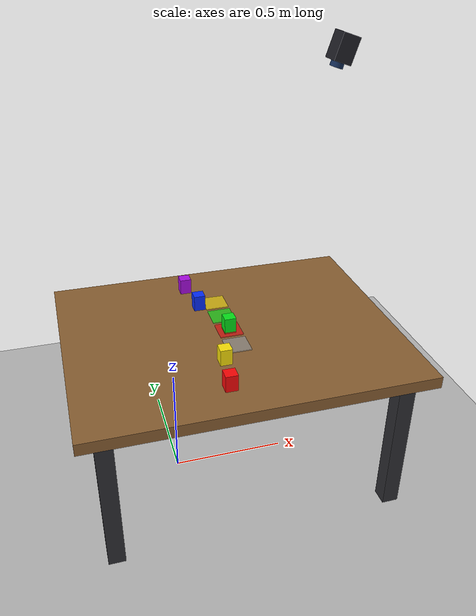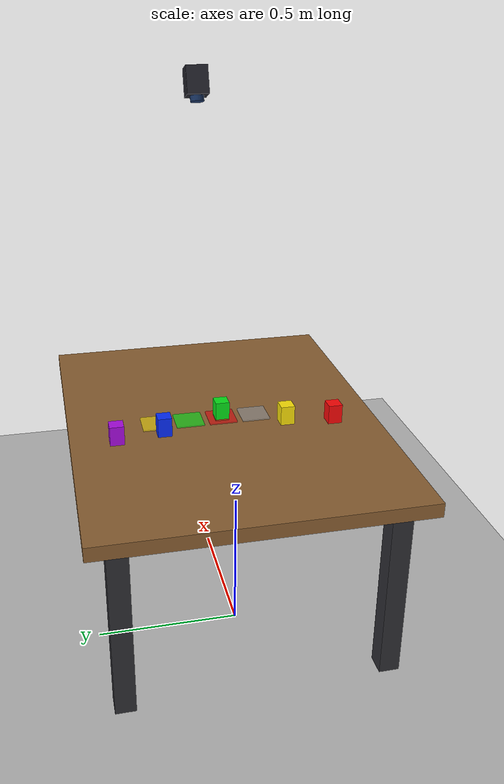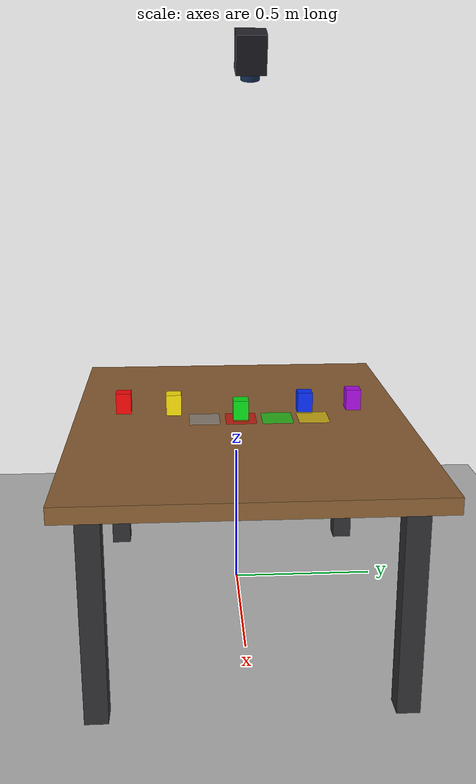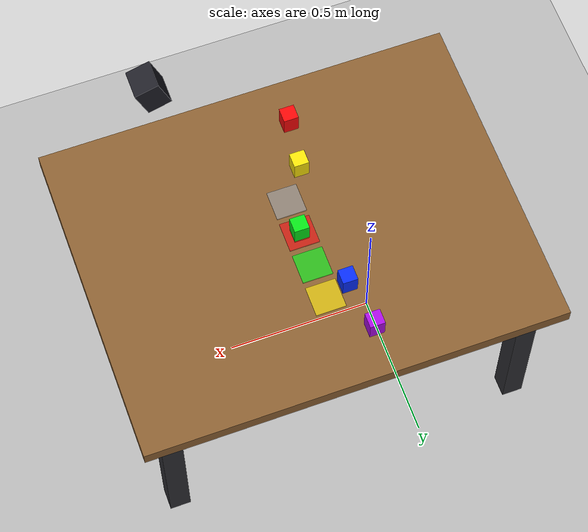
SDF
<?xml version="1.0"?>
<sdf version="1.7">
  <world name="ur3e_workcell">
    <gravity>0 0 -9.81</gravity>
    <physics name="default_physics" type="ignored">
      <max_step_size>0.001</max_step_size>
      <real_time_factor>1.0</real_time_factor>
    </physics>

    <!-- Gazebo Sim 6 / Fortress server systems. -->
    <plugin filename="ignition-gazebo-physics-system" name="gz::sim::systems::Physics"/>
    <plugin filename="ignition-gazebo-user-commands-system" name="gz::sim::systems::UserCommands"/>
    <plugin filename="ignition-gazebo-scene-broadcaster-system" name="gz::sim::systems::SceneBroadcaster"/>
    <plugin filename="ignition-gazebo-sensors-system" name="gz::sim::systems::Sensors">
      <render_engine>ogre2</render_engine>
    </plugin>

    <scene>
      <ambient>0.65 0.65 0.65</ambient>
      <background>0.82 0.84 0.88</background>
      <shadows>true</shadows>
    </scene>

    <light type="directional" name="sun">
      <cast_shadows>true</cast_shadows>
      <pose>0 0 10 0 0 0</pose>
      <diffuse>0.8 0.8 0.8 1</diffuse>
      <specular>0.2 0.2 0.2 1</specular>
      <direction>-0.5 0.1 -0.9</direction>
    </light>

    <model name="ground_plane">
      <static>true</static>
      <link name="ground_link">
        <collision name="collision"><geometry><plane><normal>0 0 1</normal><size>10 10</size></plane></geometry></collision>
        <visual name="visual"><geometry><plane><normal>0 0 1</normal><size>10 10</size></plane></geometry><material><ambient>0.72 0.72 0.72 1</ambient><diffuse>0.72 0.72 0.72 1</diffuse></material></visual>
      </link>
    </model>

    <!-- 1.40 x 1.10 m work table. Its top surface is at z=0.70 m. -->
    <model name="work_table">
      <static>true</static>
      <link name="table_link">
        <visual name="top_visual">
          <pose>0.25 0 0.675 0 0 0</pose>
          <geometry><box><size>1.40 1.10 0.05</size></box></geometry>
          <material><ambient>0.40 0.28 0.16 1</ambient><diffuse>0.55 0.38 0.20 1</diffuse></material>
        </visual>
        <collision name="top_collision">
          <pose>0.25 0 0.675 0 0 0</pose>
          <geometry><box><size>1.40 1.10 0.05</size></box></geometry>
        </collision>
        <visual name="leg_fl"><pose>-0.35 -0.45 0.325 0 0 0</pose><geometry><box><size>0.07 0.07 0.65</size></box></geometry><material><ambient>0.18 0.18 0.20 1</ambient></material></visual>
        <collision name="leg_fl_collision"><pose>-0.35 -0.45 0.325 0 0 0</pose><geometry><box><size>0.07 0.07 0.65</size></box></geometry></collision>
        <visual name="leg_fr"><pose>-0.35 0.45 0.325 0 0 0</pose><geometry><box><size>0.07 0.07 0.65</size></box></geometry><material><ambient>0.18 0.18 0.20 1</ambient></material></visual>
        <collision name="leg_fr_collision"><pose>-0.35 0.45 0.325 0 0 0</pose><geometry><box><size>0.07 0.07 0.65</size></box></geometry></collision>
        <visual name="leg_bl"><pose>0.85 -0.45 0.325 0 0 0</pose><geometry><box><size>0.07 0.07 0.65</size></box></geometry><material><ambient>0.18 0.18 0.20 1</ambient></material></visual>
        <collision name="leg_bl_collision"><pose>0.85 -0.45 0.325 0 0 0</pose><geometry><box><size>0.07 0.07 0.65</size></box></geometry></collision>
        <visual name="leg_br"><pose>0.85 0.45 0.325 0 0 0</pose><geometry><box><size>0.07 0.07 0.65</size></box></geometry><material><ambient>0.18 0.18 0.20 1</ambient></material></visual>
        <collision name="leg_br_collision"><pose>0.85 0.45 0.325 0 0 0</pose><geometry><box><size>0.07 0.07 0.65</size></box></geometry></collision>
      </link>
    </model>

    <!-- Rigid, dynamic 5 x 5 x 7 cm boxes, 5 g each. Positive mass and
         box-consistent inertia keep DART stable; friction holds a pinched box. -->
    <model name="red_box">
      <pose>0.144721 -0.389443 0.735 0 0 0</pose>
      <link name="link"><inertial><mass>0.001</mass><inertia><ixx>0.0000030833335</ixx><iyy>0.0000030833335</iyy><izz>0.0000020833335</izz></inertia></inertial><collision name="collision"><geometry><box><size>0.05 0.05 0.07</size></box></geometry><surface><friction><ode><mu>3.0</mu><mu2>3.0</mu2></ode></friction></surface></collision><visual name="visual"><geometry><box><size>0.05 0.05 0.07</size></box></geometry><material><ambient>0.8 0.02 0.02 1</ambient><diffuse>1 0.03 0.03 1</diffuse></material></visual></link>
    </model>
    <model name="yellow_box">
      <pose>0.170711 -0.220711 0.735 0 0 0</pose>
      <link name="link"><inertial><mass>0.001</mass><inertia><ixx>0.0000030833335</ixx><iyy>0.0000030833335</iyy><izz>0.0000020833335</izz></inertia></inertial><collision name="collision"><geometry><box><size>0.05 0.05 0.07</size></box></geometry><surface><friction><ode><mu>3.0</mu><mu2>3.0</mu2></ode></friction></surface></collision><visual name="visual"><geometry><box><size>0.05 0.05 0.07</size></box></geometry><material><ambient>0.85 0.75 0.02 1</ambient><diffuse>1 0.9 0.03 1</diffuse></material></visual></link>
    </model>
    <model name="green_box">
      <pose>0.25 0 0.735 0 0 0</pose>
      <link name="link"><inertial><mass>0.001</mass><inertia><ixx>0.0000030833335</ixx><iyy>0.0000030833335</iyy><izz>0.0000020833335</izz></inertia></inertial><collision name="collision"><geometry><box><size>0.05 0.05 0.07</size></box></geometry><surface><friction><ode><mu>3.0</mu><mu2>3.0</mu2></ode></friction></surface></collision><visual name="visual"><geometry><box><size>0.05 0.05 0.07</size></box></geometry><material><ambient>0.02 0.65 0.08 1</ambient><diffuse>0.03 0.9 0.10 1</diffuse></material></visual></link>
    </model>
    <model name="blue_box">
      <pose>0.170711 0.220711 0.735 0 0 0</pose>
      <link name="link"><inertial><mass>0.001</mass><inertia><ixx>0.0000030833335</ixx><iyy>0.0000030833335</iyy><izz>0.0000020833335</izz></inertia></inertial><collision name="collision"><geometry><box><size>0.05 0.05 0.07</size></box></geometry><surface><friction><ode><mu>3.0</mu><mu2>3.0</mu2></ode></friction></surface></collision><visual name="visual"><geometry><box><size>0.05 0.05 0.07</size></box></geometry><material><ambient>0.02 0.12 0.75 1</ambient><diffuse>0.03 0.18 1 1</diffuse></material></visual></link>
    </model>
    <model name="purple_box">
      <pose>0.144721 0.389443 0.735 0 0 0</pose>
      <link name="link"><inertial><mass>0.001</mass><inertia><ixx>0.0000030833335</ixx><iyy>0.0000030833335</iyy><izz>0.0000020833335</izz></inertia></inertial><collision name="collision"><geometry><box><size>0.05 0.05 0.07</size></box></geometry><surface><friction><ode><mu>3.0</mu><mu2>3.0</mu2></ode></friction></surface></collision><visual name="visual"><geometry><box><size>0.05 0.05 0.07</size></box></geometry><material><ambient>0.48 0.03 0.65 1</ambient><diffuse>0.68 0.05 0.9 1</diffuse></material></visual></link>
    </model>

    <model name="zone_1_red">
      <static>true</static><pose>0.25 0.00 0.7025 0 0 0</pose><link name="link"><visual name="visual"><transparency>0.28</transparency><geometry><box><size>0.10 0.10 0.005</size></box></geometry><material><ambient>0.75 0.05 0.05 0.72</ambient><diffuse>0.9 0.08 0.08 0.72</diffuse></material></visual></link>
    </model>
    <model name="zone_2_green">
      <static>true</static><pose>0.25 0.12 0.7025 0 0 0</pose><link name="link"><visual name="visual"><transparency>0.28</transparency><geometry><box><size>0.10 0.10 0.005</size></box></geometry><material><ambient>0.05 0.65 0.08 0.72</ambient><diffuse>0.08 0.9 0.12 0.72</diffuse></material></visual></link>
    </model>
    <model name="zone_3_yellow">
      <static>true</static><pose>0.25 0.24 0.7025 0 0 0</pose><link name="link"><visual name="visual"><transparency>0.28</transparency><geometry><box><size>0.10 0.10 0.005</size></box></geometry><material><ambient>0.75 0.65 0.05 0.72</ambient><diffuse>0.95 0.85 0.08 0.72</diffuse></material></visual></link>
    </model>

    <!-- Auxiliary staging area only. The primary destination zones remain
         zone_1_red, zone_2_green and zone_3_yellow. -->
    <model name="zone_Intermediate">
      <static>true</static>
      <pose>0.25 -0.12 0.7025 0 0 0</pose>
      <link name="link">
        <visual name="visual">
          <transparency>0.28</transparency>
          <geometry><box><size>0.10 0.10 0.005</size></box></geometry>
          <material>
            <ambient>0.45 0.45 0.45 0.72</ambient>
            <diffuse>0.60 0.60 0.60 0.72</diffuse>
          </material>
        </visual>
      </link>
    </model>

    <!-- Steep overhead view aimed at (0.30, 0, 0.7025), near the main-zone centre.
         The Gazebo camera looks along +X; the zone row runs horizontally along world +Y. -->
    <model name="workcell_camera">
      <static>true</static>
      <pose>0.65 0 1.75 0 1.24832995 3.14159265</pose>
      <link name="camera_link">
        <!-- Keep the complete housing and decorative lens behind the sensor
             origin. A lens in front of +X occludes the entire camera image. -->
        <visual name="body"><pose>-0.075 0 0 0 0 0</pose><geometry><box><size>0.10 0.08 0.07</size></box></geometry><material><ambient>0.08 0.08 0.10 1</ambient><diffuse>0.12 0.12 0.15 1</diffuse></material></visual>
        <visual name="lens"><pose>-0.015 0 0 0 1.5708 0</pose><geometry><cylinder><radius>0.025</radius><length>0.02</length></cylinder></geometry><material><ambient>0.05 0.10 0.20 1</ambient><diffuse>0.08 0.18 0.35 1</diffuse></material></visual>
        <sensor name="rgb_sensor" type="camera">
          <always_on>true</always_on>
          <update_rate>30</update_rate>
          <visualize>true</visualize>
          <camera name="workcell_camera">
            <camera_info_topic>/workcell_camera/camera_info</camera_info_topic>
            <optical_frame_id>workcell_camera_optical_frame</optical_frame_id>
            <horizontal_fov>0.90</horizontal_fov>
            <image><width>1280</width><height>960</height><format>R8G8B8</format></image>
            <clip><near>0.05</near><far>3.0</far></clip>
          </camera>
          <!-- Native Gazebo Transport topics, bridged to ROS 2 by the launch file. -->
          <topic>/workcell_camera/image_raw</topic>
        </sensor>
      </link>
    </model>
  </world>
</sdf>
